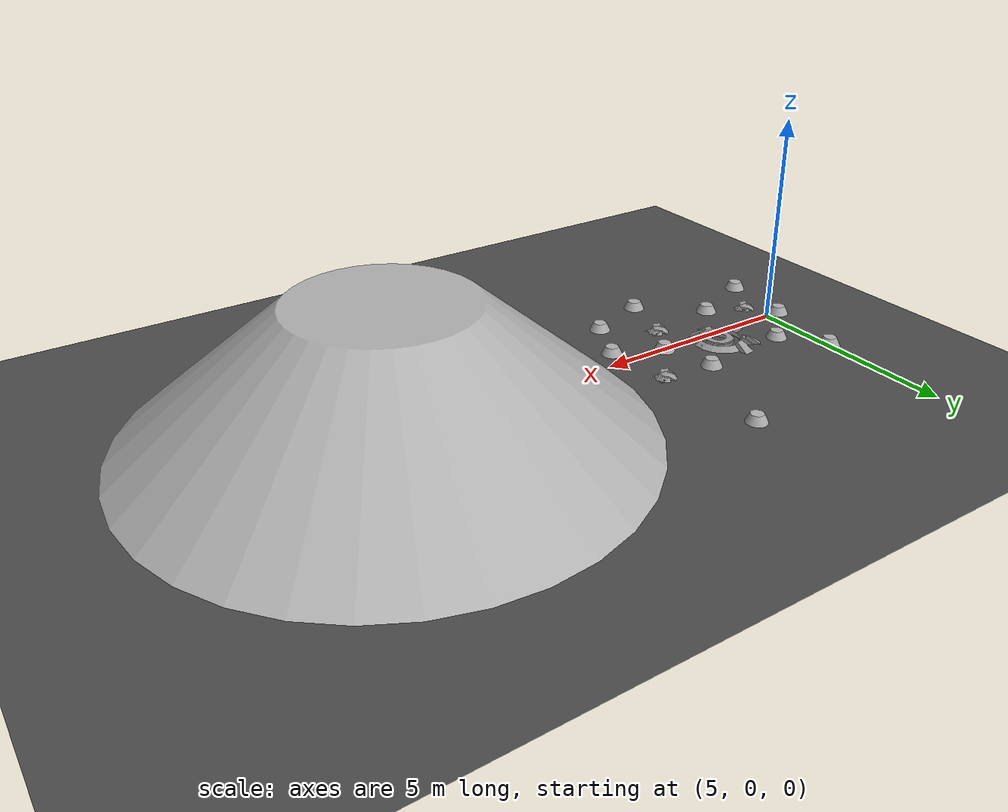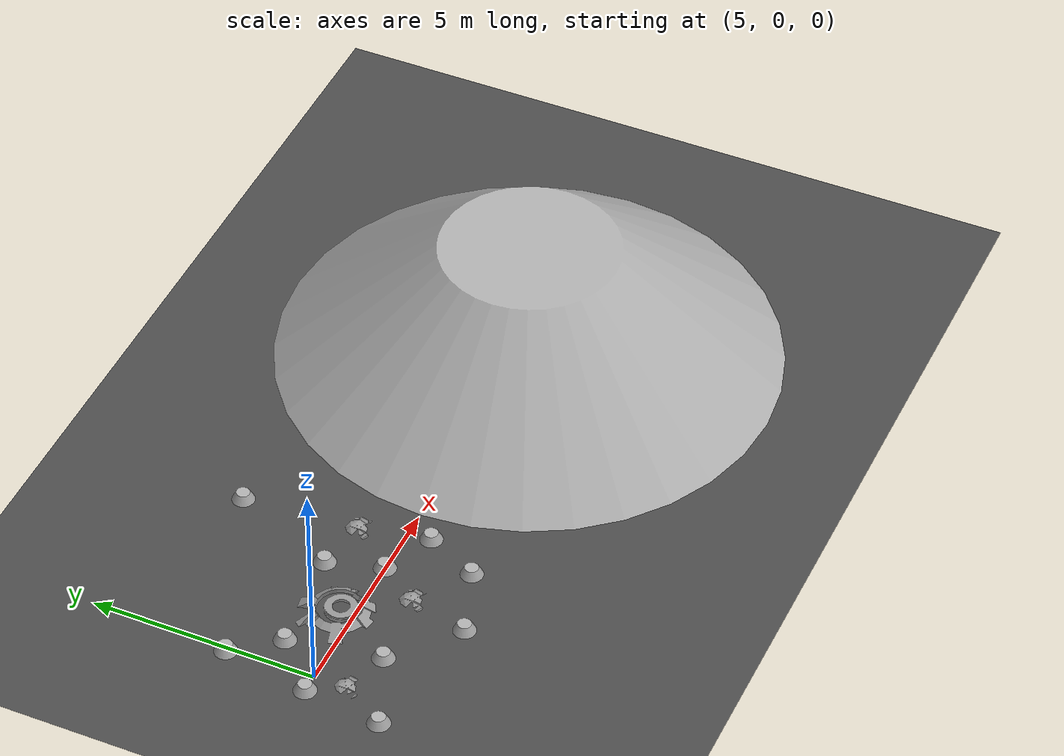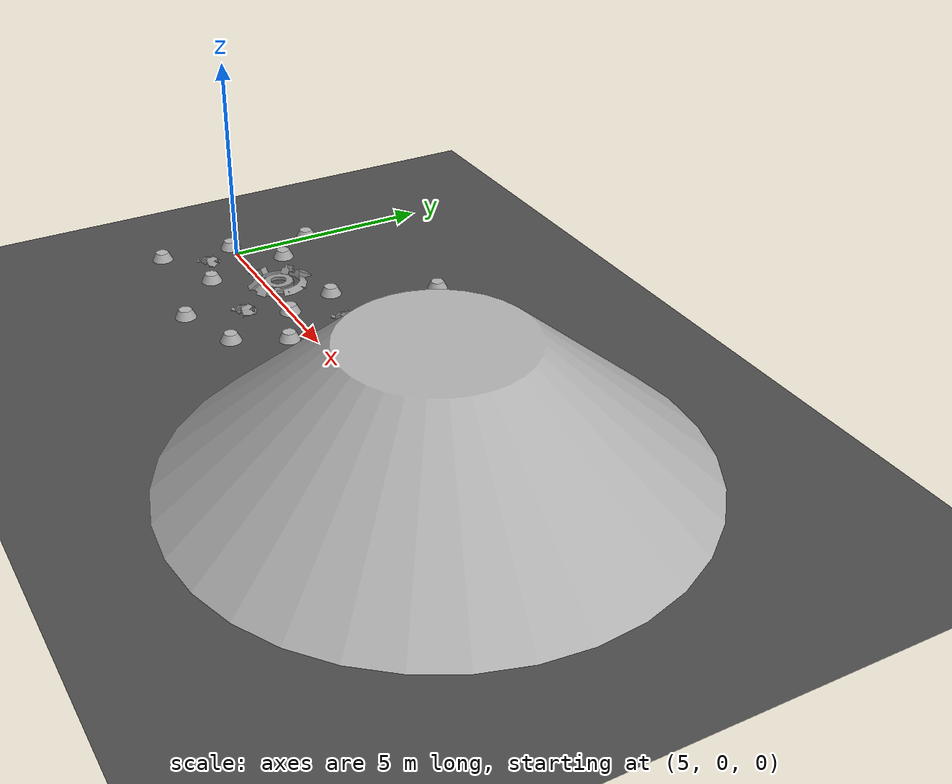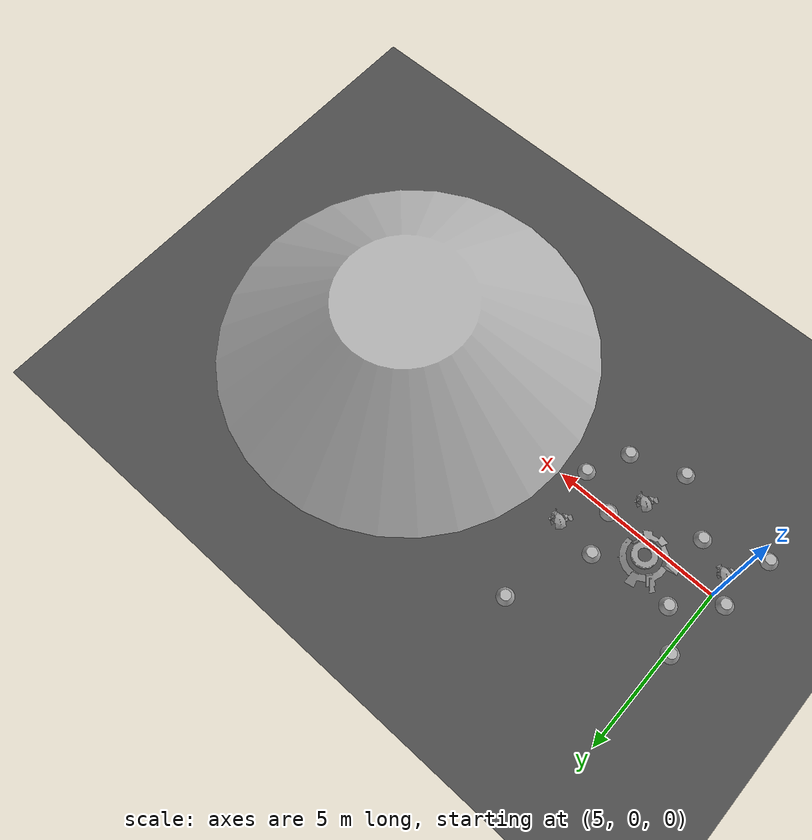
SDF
<sdf version="1.7">
 <world name="default">
  <model name="ground_plane">
   <static>1</static>
   <link name="link">
    <collision name="collision">
     <geometry><plane><normal>0 0 1</normal><size>100 100</size></plane></geometry>
     <surface><friction><ode><mu>100</mu><mu2>50</mu2></ode></friction></surface>
    </collision>
    <visual name="visual">
     <cast_shadows>0</cast_shadows>
     <geometry><plane><normal>0 0 1</normal><size>100 100</size></plane></geometry>
     <material>
      <script><uri>file://media/materials/scripts/gazebo.material</uri><name>Gazebo/DarkGrey</name></script>
     </material>
    </visual>
   </link>
  </model>
  <model name="Mountain">
   <link name="link_0">
    <inertial>
     <mass>100</mass>
     <inertia><ixx>16.6667</ixx><ixy>0</ixy><ixz>0</ixz><iyy>16.6667</iyy><iyz>0</iyz><izz>16.6667</izz></inertia>
    </inertial>
    <kinematic>1</kinematic>
    <visual name="visual">
     <pose>0 0 1.5 0 -0 0</pose>
     <geometry>
      <mesh><uri>/home/user/ros2_ws/src/rover_5k/model/mountain/mountain.dae</uri><scale>1 1 1</scale></mesh>
     </geometry>
     <material>
      <lighting>1</lighting>
      <script>
       <uri>model://mountain/materials/scripts</uri>
       <uri>model://mountain/materials/textures</uri>
       <name>mountain</name>
      </script>
      <shader type="pixel"><normal_map>__default__</normal_map></shader>
      <ambient>0.3 0.3 0.3 1</ambient>
      <diffuse>0.7 0.7 0.7 1</diffuse>
      <specular>0.01 0.01 0.01 1</specular>
      <emissive>0 0 0 1</emissive>
     </material>
    </visual>
    <collision name="collision">
     <pose>0 0 1.5 0 -0 0</pose>
     <geometry>
      <mesh><uri>/home/user/ros2_ws/src/rover_5k/model/mountain/mountain.dae</uri><scale>1 1 1</scale></mesh>
     </geometry>
     <surface>
      <friction>
       <ode><mu>100</mu><mu2>50</mu2><fdir1>0 0 0</fdir1><slip1>0</slip1><slip2>0</slip2></ode>
       <torsional>
        <coefficient>1</coefficient>
        <patch_radius>0</patch_radius>
        <surface_radius>0</surface_radius>
        <use_patch_radius>1</use_patch_radius>
        <ode><slip>0</slip></ode>
       </torsional>
      </friction>
      <bounce><restitution_coefficient>0</restitution_coefficient><threshold>1e+06</threshold></bounce>
      <contact>
       <collide_without_contact>0</collide_without_contact>
       <collide_without_contact_bitmask>1</collide_without_contact_bitmask>
       <collide_bitmask>1</collide_bitmask>
       <ode>
        <soft_cfm>0</soft_cfm>
        <soft_erp>0.2</soft_erp>
        <kp>1e+13</kp>
        <kd>1</kd>
        <max_vel>0.01</max_vel>
        <min_depth>0</min_depth>
       </ode>
       <bullet>
        <split_impulse>1</split_impulse>
        <split_impulse_penetration_threshold>-0.01</split_impulse_penetration_threshold>
        <soft_cfm>0</soft_cfm>
        <soft_erp>0.2</soft_erp>
        <kp>1e+13</kp>
        <kd>1</kd>
       </bullet>
      </contact>
     </surface>
    </collision>
   </link>
   <static>0</static>
   <pose>15.6762 -0.009079 0 0 -0 0</pose>
  </model>
  <model name="block">
   <link name="link_0">
    <inertial>
     <mass>1</mass>
     <inertia>
      <ixx>0.166667</ixx>
      <ixy>0</ixy>
      <ixz>0</ixz>
      <iyy>0.166667</iyy>
      <iyz>0</iyz>
      <izz>0.166667</izz>
     </inertia>
    </inertial>
    <kinematic>1</kinematic>
    <visual name="visual">
     <pose>0 0 0.1 0 -0 0</pose>
     <geometry>
      <mesh><uri>/home/user/ros2_ws/src/rover_5k/model/block/block.dae</uri><scale>1 1 1</scale></mesh>
     </geometry>
     <material>
      <lighting>1</lighting>
      <script>
       <uri>model://block/materials/scripts</uri>
       <uri>model://block/materials/textures</uri>
       <name>block</name>
      </script>
      <shader type="pixel"><normal_map>__default__</normal_map></shader>
      <ambient>0.3 0.3 0.3 1</ambient>
      <diffuse>0.7 0.7 0.7 1</diffuse>
      <specular>0.01 0.01 0.01 1</specular>
      <emissive>0 0 0 1</emissive>
     </material>
    </visual>
    <collision name="collision">
     <pose>0 0 0.1 0 -0 0</pose>
     <geometry>
      <mesh><uri>/home/user/ros2_ws/src/rover_5k/model/block/block.dae</uri><scale>1 1 1</scale></mesh>
     </geometry>
     <surface>
      <friction>
       <ode><mu>1</mu><mu2>1</mu2><fdir1>0 0 0</fdir1><slip1>0</slip1><slip2>0</slip2></ode>
       <torsional>
        <coefficient>1</coefficient>
        <patch_radius>0</patch_radius>
        <surface_radius>0</surface_radius>
        <use_patch_radius>1</use_patch_radius>
        <ode><slip>0</slip></ode>
       </torsional>
      </friction>
      <bounce><restitution_coefficient>0</restitution_coefficient><threshold>1e+06</threshold></bounce>
      <contact>
       <collide_without_contact>0</collide_without_contact>
       <collide_without_contact_bitmask>1</collide_without_contact_bitmask>
       <collide_bitmask>1</collide_bitmask>
       <ode>
        <soft_cfm>0</soft_cfm>
        <soft_erp>0.2</soft_erp>
        <kp>1e+13</kp>
        <kd>1</kd>
        <max_vel>0.01</max_vel>
        <min_depth>0</min_depth>
       </ode>
       <bullet>
        <split_impulse>1</split_impulse>
        <split_impulse_penetration_threshold>-0.01</split_impulse_penetration_threshold>
        <soft_cfm>0</soft_cfm>
        <soft_erp>0.2</soft_erp>
        <kp>1e+13</kp>
        <kd>1</kd>
       </bullet>
      </contact>
     </surface>
    </collision>
   </link>
   <static>0</static>
   <pose>8.0258 1.2201 0 0 -0 0</pose>
  </model>
  <model name="block_0">
   <link name="link_0">
    <inertial>
     <mass>1</mass>
     <inertia>
      <ixx>0.166667</ixx>
      <ixy>0</ixy>
      <ixz>0</ixz>
      <iyy>0.166667</iyy>
      <iyz>0</iyz>
      <izz>0.166667</izz>
     </inertia>
    </inertial>
    <kinematic>1</kinematic>
    <visual name="visual">
     <pose>0 0 0.1 0 -0 0</pose>
     <geometry>
      <mesh><uri>/home/user/ros2_ws/src/rover_5k/model/block/block.dae</uri><scale>1 1 1</scale></mesh>
     </geometry>
     <material>
      <lighting>1</lighting>
      <script>
       <uri>model://block/materials/scripts</uri>
       <uri>model://block/materials/textures</uri>
       <name>block</name>
      </script>
      <shader type="pixel"><normal_map>__default__</normal_map></shader>
      <ambient>0.3 0.3 0.3 1</ambient>
      <diffuse>0.7 0.7 0.7 1</diffuse>
      <specular>0.01 0.01 0.01 1</specular>
      <emissive>0 0 0 1</emissive>
     </material>
    </visual>
    <collision name="collision">
     <pose>0 0 0.1 0 -0 0</pose>
     <geometry>
      <mesh><uri>/home/user/ros2_ws/src/rover_5k/model/block/block.dae</uri><scale>1 1 1</scale></mesh>
     </geometry>
     <surface>
      <friction>
       <ode><mu>1</mu><mu2>1</mu2><fdir1>0 0 0</fdir1><slip1>0</slip1><slip2>0</slip2></ode>
       <torsional>
        <coefficient>1</coefficient>
        <patch_radius>0</patch_radius>
        <surface_radius>0</surface_radius>
        <use_patch_radius>1</use_patch_radius>
        <ode><slip>0</slip></ode>
       </torsional>
      </friction>
      <bounce><restitution_coefficient>0</restitution_coefficient><threshold>1e+06</threshold></bounce>
      <contact>
       <collide_without_contact>0</collide_without_contact>
       <collide_without_contact_bitmask>1</collide_without_contact_bitmask>
       <collide_bitmask>1</collide_bitmask>
       <ode>
        <soft_cfm>0</soft_cfm>
        <soft_erp>0.2</soft_erp>
        <kp>1e+13</kp>
        <kd>1</kd>
        <max_vel>0.01</max_vel>
        <min_depth>0</min_depth>
       </ode>
       <bullet>
        <split_impulse>1</split_impulse>
        <split_impulse_penetration_threshold>-0.01</split_impulse_penetration_threshold>
        <soft_cfm>0</soft_cfm>
        <soft_erp>0.2</soft_erp>
        <kp>1e+13</kp>
        <kd>1</kd>
       </bullet>
      </contact>
     </surface>
    </collision>
   </link>
   <static>0</static>
   <pose>8.38174 0.010858 0 0 -0 0</pose>
  </model>
  <model name="block_1">
   <link name="link_0">
    <inertial>
     <mass>1</mass>
     <inertia>
      <ixx>0.166667</ixx>
      <ixy>0</ixy>
      <ixz>0</ixz>
      <iyy>0.166667</iyy>
      <iyz>0</iyz>
      <izz>0.166667</izz>
     </inertia>
    </inertial>
    <kinematic>1</kinematic>
    <visual name="visual">
     <pose>0 0 0.1 0 -0 0</pose>
     <geometry>
      <mesh><uri>/home/user/ros2_ws/src/rover_5k/model/block/block.dae</uri><scale>1 1 1</scale></mesh>
     </geometry>
     <material>
      <lighting>1</lighting>
      <script>
       <uri>model://block/materials/scripts</uri>
       <uri>model://block/materials/textures</uri>
       <name>block</name>
      </script>
      <shader type="pixel"><normal_map>__default__</normal_map></shader>
      <ambient>0.3 0.3 0.3 1</ambient>
      <diffuse>0.7 0.7 0.7 1</diffuse>
      <specular>0.01 0.01 0.01 1</specular>
      <emissive>0 0 0 1</emissive>
     </material>
    </visual>
    <collision name="collision">
     <pose>0 0 0.1 0 -0 0</pose>
     <geometry>
      <mesh><uri>/home/user/ros2_ws/src/rover_5k/model/block/block.dae</uri><scale>1 1 1</scale></mesh>
     </geometry>
     <surface>
      <friction>
       <ode><mu>1</mu><mu2>1</mu2><fdir1>0 0 0</fdir1><slip1>0</slip1><slip2>0</slip2></ode>
       <torsional>
        <coefficient>1</coefficient>
        <patch_radius>0</patch_radius>
        <surface_radius>0</surface_radius>
        <use_patch_radius>1</use_patch_radius>
        <ode><slip>0</slip></ode>
       </torsional>
      </friction>
      <bounce><restitution_coefficient>0</restitution_coefficient><threshold>1e+06</threshold></bounce>
      <contact>
       <collide_without_contact>0</collide_without_contact>
       <collide_without_contact_bitmask>1</collide_without_contact_bitmask>
       <collide_bitmask>1</collide_bitmask>
       <ode>
        <soft_cfm>0</soft_cfm>
        <soft_erp>0.2</soft_erp>
        <kp>1e+13</kp>
        <kd>1</kd>
        <max_vel>0.01</max_vel>
        <min_depth>0</min_depth>
       </ode>
       <bullet>
        <split_impulse>1</split_impulse>
        <split_impulse_penetration_threshold>-0.01</split_impulse_penetration_threshold>
        <soft_cfm>0</soft_cfm>
        <soft_erp>0.2</soft_erp>
        <kp>1e+13</kp>
        <kd>1</kd>
       </bullet>
      </contact>
     </surface>
    </collision>
   </link>
   <static>0</static>
   <pose>7.44651 -2.22069 0 0 -0 0</pose>
  </model>
  <model name="block_2">
   <link name="link_0">
    <inertial>
     <mass>1</mass>
     <inertia>
      <ixx>0.166667</ixx>
      <ixy>0</ixy>
      <ixz>0</ixz>
      <iyy>0.166667</iyy>
      <iyz>0</iyz>
      <izz>0.166667</izz>
     </inertia>
    </inertial>
    <kinematic>1</kinematic>
    <visual name="visual">
     <pose>0 0 0.1 0 -0 0</pose>
     <geometry>
      <mesh><uri>/home/user/ros2_ws/src/rover_5k/model/block/block.dae</uri><scale>1 1 1</scale></mesh>
     </geometry>
     <material>
      <lighting>1</lighting>
      <script>
       <uri>model://block/materials/scripts</uri>
       <uri>model://block/materials/textures</uri>
       <name>block</name>
      </script>
      <shader type="pixel"><normal_map>__default__</normal_map></shader>
      <ambient>0.3 0.3 0.3 1</ambient>
      <diffuse>0.7 0.7 0.7 1</diffuse>
      <specular>0.01 0.01 0.01 1</specular>
      <emissive>0 0 0 1</emissive>
     </material>
    </visual>
    <collision name="collision">
     <pose>0 0 0.1 0 -0 0</pose>
     <geometry>
      <mesh><uri>/home/user/ros2_ws/src/rover_5k/model/block/block.dae</uri><scale>1 1 1</scale></mesh>
     </geometry>
     <surface>
      <friction>
       <ode><mu>1</mu><mu2>1</mu2><fdir1>0 0 0</fdir1><slip1>0</slip1><slip2>0</slip2></ode>
       <torsional>
        <coefficient>1</coefficient>
        <patch_radius>0</patch_radius>
        <surface_radius>0</surface_radius>
        <use_patch_radius>1</use_patch_radius>
        <ode><slip>0</slip></ode>
       </torsional>
      </friction>
      <bounce><restitution_coefficient>0</restitution_coefficient><threshold>1e+06</threshold></bounce>
      <contact>
       <collide_without_contact>0</collide_without_contact>
       <collide_without_contact_bitmask>1</collide_without_contact_bitmask>
       <collide_bitmask>1</collide_bitmask>
       <ode>
        <soft_cfm>0</soft_cfm>
        <soft_erp>0.2</soft_erp>
        <kp>1e+13</kp>
        <kd>1</kd>
        <max_vel>0.01</max_vel>
        <min_depth>0</min_depth>
       </ode>
       <bullet>
        <split_impulse>1</split_impulse>
        <split_impulse_penetration_threshold>-0.01</split_impulse_penetration_threshold>
        <soft_cfm>0</soft_cfm>
        <soft_erp>0.2</soft_erp>
        <kp>1e+13</kp>
        <kd>1</kd>
       </bullet>
      </contact>
     </surface>
    </collision>
   </link>
   <static>0</static>
   <pose>4.92013 1.94206 0 0 -0 0</pose>
  </model>
  <model name="block_3">
   <link name="link_0">
    <inertial>
     <mass>1</mass>
     <inertia>
      <ixx>0.166667</ixx>
      <ixy>0</ixy>
      <ixz>0</ixz>
      <iyy>0.166667</iyy>
      <iyz>0</iyz>
      <izz>0.166667</izz>
     </inertia>
    </inertial>
    <kinematic>1</kinematic>
    <visual name="visual">
     <pose>0 0 0.1 0 -0 0</pose>
     <geometry>
      <mesh><uri>/home/user/ros2_ws/src/rover_5k/model/block/block.dae</uri><scale>1 1 1</scale></mesh>
     </geometry>
     <material>
      <lighting>1</lighting>
      <script>
       <uri>model://block/materials/scripts</uri>
       <uri>model://block/materials/textures</uri>
       <name>block</name>
      </script>
      <shader type="pixel"><normal_map>__default__</normal_map></shader>
      <ambient>0.3 0.3 0.3 1</ambient>
      <diffuse>0.7 0.7 0.7 1</diffuse>
      <specular>0.01 0.01 0.01 1</specular>
      <emissive>0 0 0 1</emissive>
     </material>
    </visual>
    <collision name="collision">
     <pose>0 0 0.1 0 -0 0</pose>
     <geometry>
      <mesh><uri>/home/user/ros2_ws/src/rover_5k/model/block/block.dae</uri><scale>1 1 1</scale></mesh>
     </geometry>
     <surface>
      <friction>
       <ode><mu>1</mu><mu2>1</mu2><fdir1>0 0 0</fdir1><slip1>0</slip1><slip2>0</slip2></ode>
       <torsional>
        <coefficient>1</coefficient>
        <patch_radius>0</patch_radius>
        <surface_radius>0</surface_radius>
        <use_patch_radius>1</use_patch_radius>
        <ode><slip>0</slip></ode>
       </torsional>
      </friction>
      <bounce><restitution_coefficient>0</restitution_coefficient><threshold>1e+06</threshold></bounce>
      <contact>
       <collide_without_contact>0</collide_without_contact>
       <collide_without_contact_bitmask>1</collide_without_contact_bitmask>
       <collide_bitmask>1</collide_bitmask>
       <ode>
        <soft_cfm>0</soft_cfm>
        <soft_erp>0.2</soft_erp>
        <kp>1e+13</kp>
        <kd>1</kd>
        <max_vel>0.01</max_vel>
        <min_depth>0</min_depth>
       </ode>
       <bullet>
        <split_impulse>1</split_impulse>
        <split_impulse_penetration_threshold>-0.01</split_impulse_penetration_threshold>
        <soft_cfm>0</soft_cfm>
        <soft_erp>0.2</soft_erp>
        <kp>1e+13</kp>
        <kd>1</kd>
       </bullet>
      </contact>
     </surface>
    </collision>
   </link>
   <static>0</static>
   <pose>9.00225 3.58967 0 0 -0 0</pose>
  </model>
  <model name="block_4">
   <link name="link_0">
    <inertial>
     <mass>1</mass>
     <inertia>
      <ixx>0.166667</ixx>
      <ixy>0</ixy>
      <ixz>0</ixz>
      <iyy>0.166667</iyy>
      <iyz>0</iyz>
      <izz>0.166667</izz>
     </inertia>
    </inertial>
    <kinematic>1</kinematic>
    <visual name="visual">
     <pose>0 0 0.1 0 -0 0</pose>
     <geometry>
      <mesh><uri>/home/user/ros2_ws/src/rover_5k/model/block/block.dae</uri><scale>1 1 1</scale></mesh>
     </geometry>
     <material>
      <lighting>1</lighting>
      <script>
       <uri>model://block/materials/scripts</uri>
       <uri>model://block/materials/textures</uri>
       <name>block</name>
      </script>
      <shader type="pixel"><normal_map>__default__</normal_map></shader>
      <ambient>0.3 0.3 0.3 1</ambient>
      <diffuse>0.7 0.7 0.7 1</diffuse>
      <specular>0.01 0.01 0.01 1</specular>
      <emissive>0 0 0 1</emissive>
     </material>
    </visual>
    <collision name="collision">
     <pose>0 0 0.1 0 -0 0</pose>
     <geometry>
      <mesh><uri>/home/user/ros2_ws/src/rover_5k/model/block/block.dae</uri><scale>1 1 1</scale></mesh>
     </geometry>
     <surface>
      <friction>
       <ode><mu>1</mu><mu2>1</mu2><fdir1>0 0 0</fdir1><slip1>0</slip1><slip2>0</slip2></ode>
       <torsional>
        <coefficient>1</coefficient>
        <patch_radius>0</patch_radius>
        <surface_radius>0</surface_radius>
        <use_patch_radius>1</use_patch_radius>
        <ode><slip>0</slip></ode>
       </torsional>
      </friction>
      <bounce><restitution_coefficient>0</restitution_coefficient><threshold>1e+06</threshold></bounce>
      <contact>
       <collide_without_contact>0</collide_without_contact>
       <collide_without_contact_bitmask>1</collide_without_contact_bitmask>
       <collide_bitmask>1</collide_bitmask>
       <ode>
        <soft_cfm>0</soft_cfm>
        <soft_erp>0.2</soft_erp>
        <kp>1e+13</kp>
        <kd>1</kd>
        <max_vel>0.01</max_vel>
        <min_depth>0</min_depth>
       </ode>
       <bullet>
        <split_impulse>1</split_impulse>
        <split_impulse_penetration_threshold>-0.01</split_impulse_penetration_threshold>
        <soft_cfm>0</soft_cfm>
        <soft_erp>0.2</soft_erp>
        <kp>1e+13</kp>
        <kd>1</kd>
       </bullet>
      </contact>
     </surface>
    </collision>
   </link>
   <static>0</static>
   <pose>4.39891 -1.73265 0 0 -0 0</pose>
  </model>
  <model name="block_5">
   <link name="link_0">
    <inertial>
     <mass>1</mass>
     <inertia>
      <ixx>0.166667</ixx>
      <ixy>0</ixy>
      <ixz>0</ixz>
      <iyy>0.166667</iyy>
      <iyz>0</iyz>
      <izz>0.166667</izz>
     </inertia>
    </inertial>
    <kinematic>1</kinematic>
    <visual name="visual">
     <pose>0 0 0.1 0 -0 0</pose>
     <geometry>
      <mesh><uri>/home/user/ros2_ws/src/rover_5k/model/block/block.dae</uri><scale>1 1 1</scale></mesh>
     </geometry>
     <material>
      <lighting>1</lighting>
      <script>
       <uri>model://block/materials/scripts</uri>
       <uri>model://block/materials/textures</uri>
       <name>block</name>
      </script>
      <shader type="pixel"><normal_map>__default__</normal_map></shader>
      <ambient>0.3 0.3 0.3 1</ambient>
      <diffuse>0.7 0.7 0.7 1</diffuse>
      <specular>0.01 0.01 0.01 1</specular>
      <emissive>0 0 0 1</emissive>
     </material>
    </visual>
    <collision name="collision">
     <pose>0 0 0.1 0 -0 0</pose>
     <geometry>
      <mesh><uri>/home/user/ros2_ws/src/rover_5k/model/block/block.dae</uri><scale>1 1 1</scale></mesh>
     </geometry>
     <surface>
      <friction>
       <ode><mu>1</mu><mu2>1</mu2><fdir1>0 0 0</fdir1><slip1>0</slip1><slip2>0</slip2></ode>
       <torsional>
        <coefficient>1</coefficient>
        <patch_radius>0</patch_radius>
        <surface_radius>0</surface_radius>
        <use_patch_radius>1</use_patch_radius>
        <ode><slip>0</slip></ode>
       </torsional>
      </friction>
      <bounce><restitution_coefficient>0</restitution_coefficient><threshold>1e+06</threshold></bounce>
      <contact>
       <collide_without_contact>0</collide_without_contact>
       <collide_without_contact_bitmask>1</collide_without_contact_bitmask>
       <collide_bitmask>1</collide_bitmask>
       <ode>
        <soft_cfm>0</soft_cfm>
        <soft_erp>0.2</soft_erp>
        <kp>1e+13</kp>
        <kd>1</kd>
        <max_vel>0.01</max_vel>
        <min_depth>0</min_depth>
       </ode>
       <bullet>
        <split_impulse>1</split_impulse>
        <split_impulse_penetration_threshold>-0.01</split_impulse_penetration_threshold>
        <soft_cfm>0</soft_cfm>
        <soft_erp>0.2</soft_erp>
        <kp>1e+13</kp>
        <kd>1</kd>
       </bullet>
      </contact>
     </surface>
    </collision>
   </link>
   <static>0</static>
   <pose>4.59787 -0.002678 0 0 -0 0</pose>
  </model>
  <model name="block_6">
   <link name="link_0">
    <inertial>
     <mass>1</mass>
     <inertia>
      <ixx>0.166667</ixx>
      <ixy>0</ixy>
      <ixz>0</ixz>
      <iyy>0.166667</iyy>
      <iyz>0</iyz>
      <izz>0.166667</izz>
     </inertia>
    </inertial>
    <kinematic>1</kinematic>
    <visual name="visual">
     <pose>0 0 0.1 0 -0 0</pose>
     <geometry>
      <mesh><uri>/home/user/ros2_ws/src/rover_5k/model/block/block.dae</uri><scale>1 1 1</scale></mesh>
     </geometry>
     <material>
      <lighting>1</lighting>
      <script>
       <uri>model://block/materials/scripts</uri>
       <uri>model://block/materials/textures</uri>
       <name>block</name>
      </script>
      <shader type="pixel"><normal_map>__default__</normal_map></shader>
      <ambient>0.3 0.3 0.3 1</ambient>
      <diffuse>0.7 0.7 0.7 1</diffuse>
      <specular>0.01 0.01 0.01 1</specular>
      <emissive>0 0 0 1</emissive>
     </material>
    </visual>
    <collision name="collision">
     <pose>0 0 0.1 0 -0 0</pose>
     <geometry>
      <mesh><uri>/home/user/ros2_ws/src/rover_5k/model/block/block.dae</uri><scale>1 1 1</scale></mesh>
     </geometry>
     <surface>
      <friction>
       <ode><mu>1</mu><mu2>1</mu2><fdir1>0 0 0</fdir1><slip1>0</slip1><slip2>0</slip2></ode>
       <torsional>
        <coefficient>1</coefficient>
        <patch_radius>0</patch_radius>
        <surface_radius>0</surface_radius>
        <use_patch_radius>1</use_patch_radius>
        <ode><slip>0</slip></ode>
       </torsional>
      </friction>
      <bounce><restitution_coefficient>0</restitution_coefficient><threshold>1e+06</threshold></bounce>
      <contact>
       <collide_without_contact>0</collide_without_contact>
       <collide_without_contact_bitmask>1</collide_without_contact_bitmask>
       <collide_bitmask>1</collide_bitmask>
       <ode>
        <soft_cfm>0</soft_cfm>
        <soft_erp>0.2</soft_erp>
        <kp>1e+13</kp>
        <kd>1</kd>
        <max_vel>0.01</max_vel>
        <min_depth>0</min_depth>
       </ode>
       <bullet>
        <split_impulse>1</split_impulse>
        <split_impulse_penetration_threshold>-0.01</split_impulse_penetration_threshold>
        <soft_cfm>0</soft_cfm>
        <soft_erp>0.2</soft_erp>
        <kp>1e+13</kp>
        <kd>1</kd>
       </bullet>
      </contact>
     </surface>
    </collision>
   </link>
   <static>0</static>
   <pose>5.68725 0.982847 0 0 -0 0</pose>
  </model>
  <model name="block_9">
   <link name="link_0">
    <inertial>
     <mass>1</mass>
     <inertia>
      <ixx>0.166667</ixx>
      <ixy>0</ixy>
      <ixz>0</ixz>
      <iyy>0.166667</iyy>
      <iyz>0</iyz>
      <izz>0.166667</izz>
     </inertia>
    </inertial>
    <kinematic>1</kinematic>
    <visual name="visual">
     <pose>0 0 0.1 0 -0 0</pose>
     <geometry>
      <mesh><uri>/home/user/ros2_ws/src/rover_5k/model/block/block.dae</uri><scale>1 1 1</scale></mesh>
     </geometry>
     <material>
      <lighting>1</lighting>
      <script>
       <uri>model://block/materials/scripts</uri>
       <uri>model://block/materials/textures</uri>
       <name>block</name>
      </script>
      <shader type="pixel"><normal_map>__default__</normal_map></shader>
      <ambient>0.3 0.3 0.3 1</ambient>
      <diffuse>0.7 0.7 0.7 1</diffuse>
      <specular>0.01 0.01 0.01 1</specular>
      <emissive>0 0 0 1</emissive>
     </material>
    </visual>
    <collision name="collision">
     <pose>0 0 0.1 0 -0 0</pose>
     <geometry>
      <mesh><uri>/home/user/ros2_ws/src/rover_5k/model/block/block.dae</uri><scale>1 1 1</scale></mesh>
     </geometry>
     <surface>
      <friction>
       <ode><mu>1</mu><mu2>1</mu2><fdir1>0 0 0</fdir1><slip1>0</slip1><slip2>0</slip2></ode>
       <torsional>
        <coefficient>1</coefficient>
        <patch_radius>0</patch_radius>
        <surface_radius>0</surface_radius>
        <use_patch_radius>1</use_patch_radius>
        <ode><slip>0</slip></ode>
       </torsional>
      </friction>
      <bounce><restitution_coefficient>0</restitution_coefficient><threshold>1e+06</threshold></bounce>
      <contact>
       <collide_without_contact>0</collide_without_contact>
       <collide_without_contact_bitmask>1</collide_without_contact_bitmask>
       <collide_bitmask>1</collide_bitmask>
       <ode>
        <soft_cfm>0</soft_cfm>
        <soft_erp>0.2</soft_erp>
        <kp>1e+13</kp>
        <kd>1</kd>
        <max_vel>0.01</max_vel>
        <min_depth>0</min_depth>
       </ode>
       <bullet>
        <split_impulse>1</split_impulse>
        <split_impulse_penetration_threshold>-0.01</split_impulse_penetration_threshold>
        <soft_cfm>0</soft_cfm>
        <soft_erp>0.2</soft_erp>
        <kp>1e+13</kp>
        <kd>1</kd>
       </bullet>
      </contact>
     </surface>
    </collision>
   </link>
   <static>0</static>
   <pose>6.05444 -1.05533 0 0 -0 0</pose>
  </model>
  <model name="block3">
   <link name="link_1">
    <inertial>
     <mass>10</mass>
     <inertia>
      <ixx>0.166667</ixx>
      <ixy>0</ixy>
      <ixz>0</ixz>
      <iyy>0.166667</iyy>
      <iyz>0</iyz>
      <izz>0.166667</izz>
     </inertia>
    </inertial>
    <kinematic>1</kinematic>
    <visual name="visual">
     <geometry>
      <mesh><uri>/home/user/ros2_ws/src/rover_5k/model/block3/block3.dae</uri><scale>1 1 1</scale></mesh>
     </geometry>
     <material>
      <lighting>1</lighting>
      <script><uri>file://media/materials/scripts/gazebo.material</uri><name>Gazebo/Grey</name></script>
      <shader type="pixel"><normal_map>__default__</normal_map></shader>
      <ambient>0.3 0.3 0.3 1</ambient>
      <diffuse>0.7 0.7 0.7 1</diffuse>
      <specular>0.01 0.01 0.01 1</specular>
      <emissive>0 0 0 1</emissive>
     </material>
    </visual>
    <collision name="collision">
     <geometry>
      <mesh><uri>/home/user/ros2_ws/src/rover_5k/model/block3/block3.dae</uri><scale>1 1 1</scale></mesh>
     </geometry>
     <surface>
      <friction>
       <ode><mu>1</mu><mu2>1</mu2><fdir1>0 0 0</fdir1><slip1>0</slip1><slip2>0</slip2></ode>
       <torsional>
        <coefficient>1</coefficient>
        <patch_radius>0</patch_radius>
        <surface_radius>0</surface_radius>
        <use_patch_radius>1</use_patch_radius>
        <ode><slip>0</slip></ode>
       </torsional>
      </friction>
      <bounce><restitution_coefficient>0</restitution_coefficient><threshold>1e+06</threshold></bounce>
      <contact>
       <collide_without_contact>0</collide_without_contact>
       <collide_without_contact_bitmask>1</collide_without_contact_bitmask>
       <collide_bitmask>1</collide_bitmask>
       <ode>
        <soft_cfm>0</soft_cfm>
        <soft_erp>0.2</soft_erp>
        <kp>1e+13</kp>
        <kd>1</kd>
        <max_vel>0.01</max_vel>
        <min_depth>0</min_depth>
       </ode>
       <bullet>
        <split_impulse>1</split_impulse>
        <split_impulse_penetration_threshold>-0.01</split_impulse_penetration_threshold>
        <soft_cfm>0</soft_cfm>
        <soft_erp>0.2</soft_erp>
        <kp>1e+13</kp>
        <kd>1</kd>
       </bullet>
      </contact>
     </surface>
    </collision>
   </link>
   <static>0</static>
   <pose>5.05908 -0.680988 -0.190044 0 -0 0</pose>
  </model>
  <model name="block3_1">
   <link name="link_1">
    <inertial>
     <mass>10</mass>
     <inertia>
      <ixx>0.166667</ixx>
      <ixy>0</ixy>
      <ixz>0</ixz>
      <iyy>0.166667</iyy>
      <iyz>0</iyz>
      <izz>0.166667</izz>
     </inertia>
    </inertial>
    <kinematic>1</kinematic>
    <visual name="visual">
     <geometry>
      <mesh><uri>/home/user/ros2_ws/src/rover_5k/model/block3/block3.dae</uri><scale>1 1 1</scale></mesh>
     </geometry>
     <material>
      <lighting>1</lighting>
      <script><uri>file://media/materials/scripts/gazebo.material</uri><name>Gazebo/Grey</name></script>
      <shader type="pixel"><normal_map>__default__</normal_map></shader>
      <ambient>0.3 0.3 0.3 1</ambient>
      <diffuse>0.7 0.7 0.7 1</diffuse>
      <specular>0.01 0.01 0.01 1</specular>
      <emissive>0 0 0 1</emissive>
     </material>
    </visual>
    <collision name="collision">
     <geometry>
      <mesh><uri>/home/user/ros2_ws/src/rover_5k/model/block3/block3.dae</uri><scale>1 1 1</scale></mesh>
     </geometry>
     <surface>
      <friction>
       <ode><mu>1</mu><mu2>1</mu2><fdir1>0 0 0</fdir1><slip1>0</slip1><slip2>0</slip2></ode>
       <torsional>
        <coefficient>1</coefficient>
        <patch_radius>0</patch_radius>
        <surface_radius>0</surface_radius>
        <use_patch_radius>1</use_patch_radius>
        <ode><slip>0</slip></ode>
       </torsional>
      </friction>
      <bounce><restitution_coefficient>0</restitution_coefficient><threshold>1e+06</threshold></bounce>
      <contact>
       <collide_without_contact>0</collide_without_contact>
       <collide_without_contact_bitmask>1</collide_without_contact_bitmask>
       <collide_bitmask>1</collide_bitmask>
       <ode>
        <soft_cfm>0</soft_cfm>
        <soft_erp>0.2</soft_erp>
        <kp>1e+13</kp>
        <kd>1</kd>
        <max_vel>0.01</max_vel>
        <min_depth>0</min_depth>
       </ode>
       <bullet>
        <split_impulse>1</split_impulse>
        <split_impulse_penetration_threshold>-0.01</split_impulse_penetration_threshold>
        <soft_cfm>0</soft_cfm>
        <soft_erp>0.2</soft_erp>
        <kp>1e+13</kp>
        <kd>1</kd>
       </bullet>
      </contact>
     </surface>
    </collision>
   </link>
   <static>0</static>
   <pose>9.23682 1.06527 -0.167805 0 -0 0</pose>
  </model>
  <model name="block2_clone">
   <link name="link_0">
    <inertial>
     <mass>10</mass>
     <inertia>
      <ixx>0.166667</ixx>
      <ixy>0</ixy>
      <ixz>0</ixz>
      <iyy>0.166667</iyy>
      <iyz>0</iyz>
      <izz>0.166667</izz>
     </inertia>
    </inertial>
    <kinematic>1</kinematic>
    <visual name="visual">
     <geometry>
      <mesh><uri>/home/user/ros2_ws/src/rover_5k/model/block2/block2.dae</uri><scale>1 1 1</scale></mesh>
     </geometry>
     <material>
      <lighting>1</lighting>
      <script><uri>file://media/materials/scripts/gazebo.material</uri><name>Gazebo/Grey</name></script>
      <shader type="pixel"><normal_map>__default__</normal_map></shader>
      <ambient>0.3 0.3 0.3 1</ambient>
      <diffuse>0.7 0.7 0.7 1</diffuse>
      <specular>0.01 0.01 0.01 1</specular>
      <emissive>0 0 0 1</emissive>
     </material>
    </visual>
    <collision name="collision">
     <geometry>
      <mesh><uri>/home/user/ros2_ws/src/rover_5k/model/block2/block2.dae</uri><scale>1 1 1</scale></mesh>
     </geometry>
     <surface>
      <friction>
       <ode><mu>1</mu><mu2>1</mu2><fdir1>0 0 0</fdir1><slip1>0</slip1><slip2>0</slip2></ode>
       <torsional>
        <coefficient>1</coefficient>
        <patch_radius>0</patch_radius>
        <surface_radius>0</surface_radius>
        <use_patch_radius>1</use_patch_radius>
        <ode><slip>0</slip></ode>
       </torsional>
      </friction>
      <bounce><restitution_coefficient>0</restitution_coefficient><threshold>1e+06</threshold></bounce>
      <contact>
       <collide_without_contact>0</collide_without_contact>
       <collide_without_contact_bitmask>1</collide_without_contact_bitmask>
       <collide_bitmask>1</collide_bitmask>
       <ode>
        <soft_cfm>0</soft_cfm>
        <soft_erp>0.2</soft_erp>
        <kp>1e+13</kp>
        <kd>1</kd>
        <max_vel>0.01</max_vel>
        <min_depth>0</min_depth>
       </ode>
       <bullet>
        <split_impulse>1</split_impulse>
        <split_impulse_penetration_threshold>-0.01</split_impulse_penetration_threshold>
        <soft_cfm>0</soft_cfm>
        <soft_erp>0.2</soft_erp>
        <kp>1e+13</kp>
        <kd>1</kd>
       </bullet>
      </contact>
     </surface>
    </collision>
   </link>
   <static>0</static>
   <pose>6.92939 0.35324 -0.071163 0 -0 0</pose>
  </model>
  <model name="block_12">
   <link name="link_0">
    <inertial>
     <mass>1</mass>
     <inertia>
      <ixx>0.166667</ixx>
      <ixy>0</ixy>
      <ixz>0</ixz>
      <iyy>0.166667</iyy>
      <iyz>0</iyz>
      <izz>0.166667</izz>
     </inertia>
    </inertial>
    <kinematic>1</kinematic>
    <visual name="visual">
     <pose>0 0 0.1 0 -0 0</pose>
     <geometry>
      <mesh><uri>/home/user/ros2_ws/src/rover_5k/model/block/block.dae</uri><scale>1 1 1</scale></mesh>
     </geometry>
     <material>
      <lighting>1</lighting>
      <script>
       <uri>model://block/materials/scripts</uri>
       <uri>model://block/materials/textures</uri>
       <name>block</name>
      </script>
      <shader type="pixel"><normal_map>__default__</normal_map></shader>
      <ambient>0.3 0.3 0.3 1</ambient>
      <diffuse>0.7 0.7 0.7 1</diffuse>
      <specular>0.01 0.01 0.01 1</specular>
      <emissive>0 0 0 1</emissive>
     </material>
    </visual>
    <collision name="collision">
     <pose>0 0 0.1 0 -0 0</pose>
     <geometry>
      <mesh><uri>/home/user/ros2_ws/src/rover_5k/model/block/block.dae</uri><scale>1 1 1</scale></mesh>
     </geometry>
     <surface>
      <friction>
       <ode><mu>1</mu><mu2>1</mu2><fdir1>0 0 0</fdir1><slip1>0</slip1><slip2>0</slip2></ode>
       <torsional>
        <coefficient>1</coefficient>
        <patch_radius>0</patch_radius>
        <surface_radius>0</surface_radius>
        <use_patch_radius>1</use_patch_radius>
        <ode><slip>0</slip></ode>
       </torsional>
      </friction>
      <bounce><restitution_coefficient>0</restitution_coefficient><threshold>1e+06</threshold></bounce>
      <contact>
       <collide_without_contact>0</collide_without_contact>
       <collide_without_contact_bitmask>1</collide_without_contact_bitmask>
       <collide_bitmask>1</collide_bitmask>
       <ode>
        <soft_cfm>0</soft_cfm>
        <soft_erp>0.2</soft_erp>
        <kp>1e+13</kp>
        <kd>1</kd>
        <max_vel>0.01</max_vel>
        <min_depth>0</min_depth>
       </ode>
       <bullet>
        <split_impulse>1</split_impulse>
        <split_impulse_penetration_threshold>-0.01</split_impulse_penetration_threshold>
        <soft_cfm>0</soft_cfm>
        <soft_erp>0.2</soft_erp>
        <kp>1e+13</kp>
        <kd>1</kd>
       </bullet>
      </contact>
     </surface>
    </collision>
   </link>
   <static>0</static>
   <pose>8.9651 -1.69259 0 0 -0 0</pose>
  </model>
  <model name="block_13">
   <link name="link_0">
    <inertial>
     <mass>1</mass>
     <inertia>
      <ixx>0.166667</ixx>
      <ixy>0</ixy>
      <ixz>0</ixz>
      <iyy>0.166667</iyy>
      <iyz>0</iyz>
      <izz>0.166667</izz>
     </inertia>
    </inertial>
    <kinematic>1</kinematic>
    <visual name="visual">
     <pose>0 0 0.1 0 -0 0</pose>
     <geometry>
      <mesh><uri>/home/user/ros2_ws/src/rover_5k/model/block/block.dae</uri><scale>1 1 1</scale></mesh>
     </geometry>
     <material>
      <lighting>1</lighting>
      <script>
       <uri>model://block/materials/scripts</uri>
       <uri>model://block/materials/textures</uri>
       <name>block</name>
      </script>
      <shader type="pixel"><normal_map>__default__</normal_map></shader>
      <ambient>0.3 0.3 0.3 1</ambient>
      <diffuse>0.7 0.7 0.7 1</diffuse>
      <specular>0.01 0.01 0.01 1</specular>
      <emissive>0 0 0 1</emissive>
     </material>
    </visual>
    <collision name="collision">
     <pose>0 0 0.1 0 -0 0</pose>
     <geometry>
      <mesh><uri>/home/user/ros2_ws/src/rover_5k/model/block/block.dae</uri><scale>1 1 1</scale></mesh>
     </geometry>
     <surface>
      <friction>
       <ode><mu>1</mu><mu2>1</mu2><fdir1>0 0 0</fdir1><slip1>0</slip1><slip2>0</slip2></ode>
       <torsional>
        <coefficient>1</coefficient>
        <patch_radius>0</patch_radius>
        <surface_radius>0</surface_radius>
        <use_patch_radius>1</use_patch_radius>
        <ode><slip>0</slip></ode>
       </torsional>
      </friction>
      <bounce><restitution_coefficient>0</restitution_coefficient><threshold>1e+06</threshold></bounce>
      <contact>
       <collide_without_contact>0</collide_without_contact>
       <collide_without_contact_bitmask>1</collide_without_contact_bitmask>
       <collide_bitmask>1</collide_bitmask>
       <ode>
        <soft_cfm>0</soft_cfm>
        <soft_erp>0.2</soft_erp>
        <kp>1e+13</kp>
        <kd>1</kd>
        <max_vel>0.01</max_vel>
        <min_depth>0</min_depth>
       </ode>
       <bullet>
        <split_impulse>1</split_impulse>
        <split_impulse_penetration_threshold>-0.01</split_impulse_penetration_threshold>
        <soft_cfm>0</soft_cfm>
        <soft_erp>0.2</soft_erp>
        <kp>1e+13</kp>
        <kd>1</kd>
       </bullet>
      </contact>
     </surface>
    </collision>
   </link>
   <static>0</static>
   <pose>9.5423 -0.506761 0 0 -0 0</pose>
  </model>
  <model name="block3_1_clone">
   <link name="link_1">
    <inertial>
     <mass>10</mass>
     <inertia>
      <ixx>0.166667</ixx>
      <ixy>0</ixy>
      <ixz>0</ixz>
      <iyy>0.166667</iyy>
      <iyz>0</iyz>
      <izz>0.166667</izz>
     </inertia>
    </inertial>
    <kinematic>1</kinematic>
    <visual name="visual">
     <geometry>
      <mesh><uri>/home/user/ros2_ws/src/rover_5k/model/block3/block3.dae</uri><scale>1 1 1</scale></mesh>
     </geometry>
     <material>
      <lighting>1</lighting>
      <script><uri>file://media/materials/scripts/gazebo.material</uri><name>Gazebo/Grey</name></script>
      <shader type="pixel"><normal_map>__default__</normal_map></shader>
      <ambient>0.3 0.3 0.3 1</ambient>
      <diffuse>0.7 0.7 0.7 1</diffuse>
      <specular>0.01 0.01 0.01 1</specular>
      <emissive>0 0 0 1</emissive>
     </material>
    </visual>
    <collision name="collision">
     <geometry>
      <mesh><uri>/home/user/ros2_ws/src/rover_5k/model/block3/block3.dae</uri><scale>1 1 1</scale></mesh>
     </geometry>
     <surface>
      <friction>
       <ode><mu>1</mu><mu2>1</mu2><fdir1>0 0 0</fdir1><slip1>0</slip1><slip2>0</slip2></ode>
       <torsional>
        <coefficient>1</coefficient>
        <patch_radius>0</patch_radius>
        <surface_radius>0</surface_radius>
        <use_patch_radius>1</use_patch_radius>
        <ode><slip>0</slip></ode>
       </torsional>
      </friction>
      <bounce><restitution_coefficient>0</restitution_coefficient><threshold>1e+06</threshold></bounce>
      <contact>
       <collide_without_contact>0</collide_without_contact>
       <collide_without_contact_bitmask>1</collide_without_contact_bitmask>
       <collide_bitmask>1</collide_bitmask>
       <ode>
        <soft_cfm>0</soft_cfm>
        <soft_erp>0.2</soft_erp>
        <kp>1e+13</kp>
        <kd>1</kd>
        <max_vel>0.01</max_vel>
        <min_depth>0</min_depth>
       </ode>
       <bullet>
        <split_impulse>1</split_impulse>
        <split_impulse_penetration_threshold>-0.01</split_impulse_penetration_threshold>
        <soft_cfm>0</soft_cfm>
        <soft_erp>0.2</soft_erp>
        <kp>1e+13</kp>
        <kd>1</kd>
       </bullet>
      </contact>
     </surface>
    </collision>
   </link>
   <static>0</static>
   <pose>7.80448 -0.850741 -0.167805 0 -0 0</pose>
  </model>
 </world>
</sdf>
